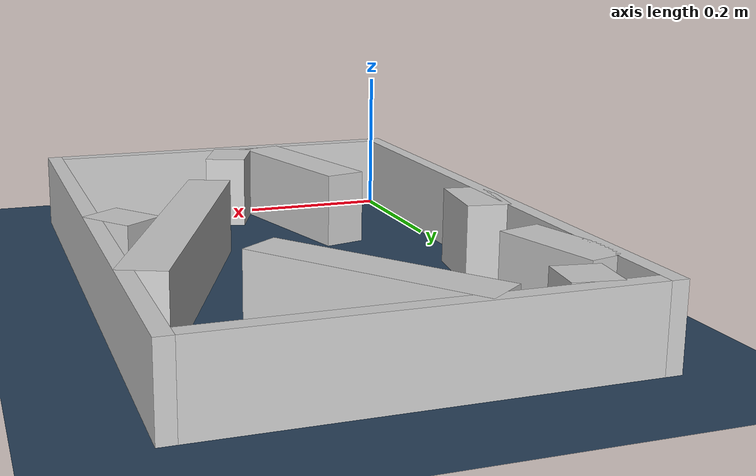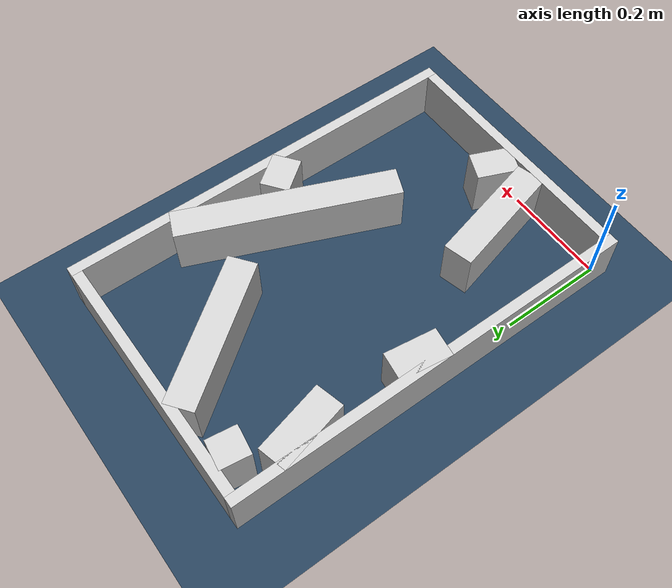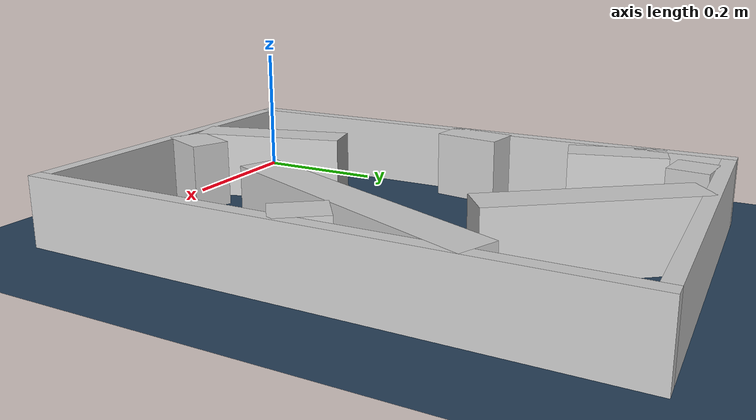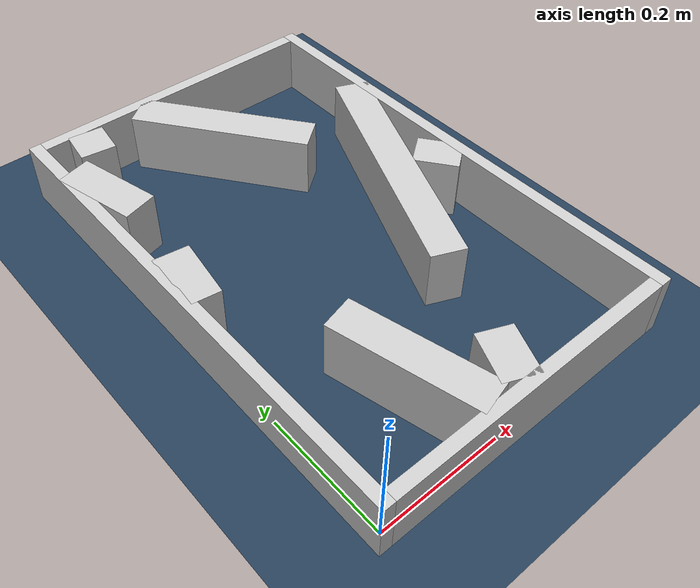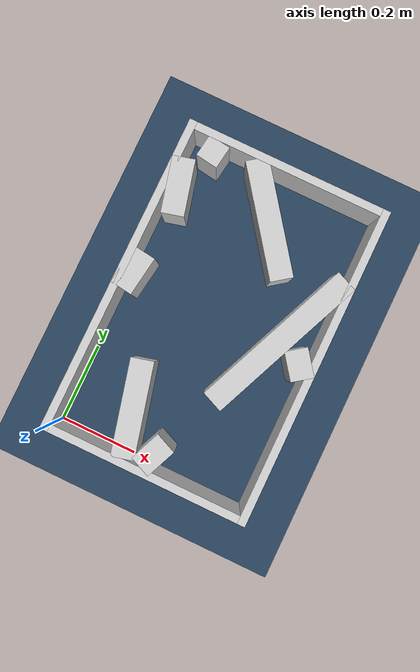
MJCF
<?xml version="1.0" ?>
<mujoco model="generated_real_template">
  <compiler angle="degree"/>
  <option timestep="0.002" integrator="implicitfast" iterations="100" cone="elliptic"/>
  <default>
    <geom density="1"/>
  </default>
  <asset>
    <texture builtin="gradient" height="3072" rgb1="0.3 0.5 0.7" rgb2="0 0 0" type="skybox" width="512"/>
    <texture builtin="checker" height="300" mark="edge" markrgb="0.8 0.8 0.8" name="groundplane" rgb1="0.2 0.3 0.4" rgb2="0.1 0.2 0.3" type="2d" width="300"/>
    <material name="groundplane" reflectance="0.2" texrepeat="5 5" texture="groundplane" texuniform="true"/>
  </asset>
  <worldbody>
    <light dir="0 0 -1" directional="true" pos="0 0 1.5"/>
    <geom name="floor" type="plane" condim="4" friction="0.5 0.005 0.001" material="groundplane" size="0 0 0.05"/>
    <body name="walls">
      <geom name="wall_boundary_left" type="box" condim="4" friction="1.0 0.005 0.0001" rgba="0.8 0.8 0.8 1" pos="-0.010000 0.387500 0.050000" euler="0 0 0.000000" size="0.010000 0.407500 0.050000"/>
      <geom name="wall_boundary_right" type="box" condim="4" friction="1.0 0.005 0.0001" rgba="0.8 0.8 0.8 1" pos="0.500000 0.387500 0.050000" euler="0 0 0.000000" size="0.010000 0.407500 0.050000"/>
      <geom name="wall_boundary_bottom" type="box" condim="4" friction="1.0 0.005 0.0001" rgba="0.8 0.8 0.8 1" pos="0.245000 -0.010000 0.050000" euler="0 0 0.000000" size="0.245000 0.010000 0.050000"/>
      <geom name="wall_boundary_top" type="box" condim="4" friction="1.0 0.005 0.0001" rgba="0.8 0.8 0.8 1" pos="0.245000 0.785000 0.050000" euler="0 0 0.000000" size="0.245000 0.010000 0.050000"/>
      <geom name="wall_inner_1_1" type="box" condim="4" friction="1.0 0.005 0.0001" rgba="0.8 0.8 0.8 1" pos="0.064291 0.746175 0.050000" euler="0 0 -98.198925" size="0.029123 0.028500 0.050000"/>
      <geom name="wall_inner_1_2" type="box" condim="4" friction="1.0 0.005 0.0001" rgba="0.8 0.8 0.8 1" pos="0.015439 0.407123 0.050000" euler="0 0 -98.198925" size="0.050692 0.028500 0.050000"/>
      <geom name="wall_inner_2_1" type="box" condim="4" friction="1.0 0.005 0.0001" rgba="0.8 0.8 0.8 1" pos="0.024954 0.634914 0.050000" euler="0 0 -75.820995" size="0.070714 0.028500 0.050000"/>
      <geom name="wall_inner_2_2" type="box" condim="4" friction="1.0 0.005 0.0001" rgba="0.8 0.8 0.8 1" pos="0.156602 0.113844 0.050000" euler="0 0 -75.820995" size="0.117421 0.028500 0.050000"/>
      <geom name="wall_inner_3_1" type="box" condim="4" friction="1.0 0.005 0.0001" rgba="0.8 0.8 0.8 1" pos="0.246366 0.037868 0.050000" euler="0 0 67.133219" size="0.041097 0.028500 0.050000"/>
      <geom name="wall_inner_3_2" type="box" condim="4" friction="1.0 0.005 0.0001" rgba="0.8 0.8 0.8 1" pos="0.400770 0.403985 0.050000" euler="0 0 67.133219" size="0.213512 0.028500 0.050000"/>
      <geom name="wall_inner_4_1" type="box" condim="4" friction="1.0 0.005 0.0001" rgba="0.8 0.8 0.8 1" pos="0.255263 0.656346 0.050000" euler="0 0 -53.359974" size="0.147874 0.028500 0.050000"/>
      <geom name="wall_inner_4_2" type="box" condim="4" friction="1.0 0.005 0.0001" rgba="0.8 0.8 0.8 1" pos="0.465233 0.374033 0.050000" euler="0 0 -53.359974" size="0.036692 0.028500 0.050000"/>
    </body>
  </worldbody>
</mujoco>
